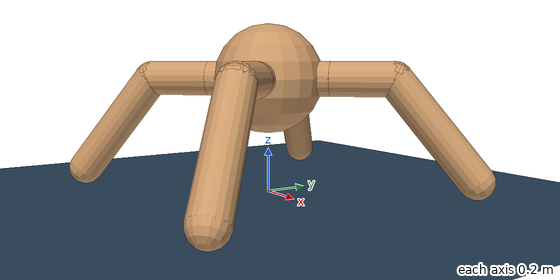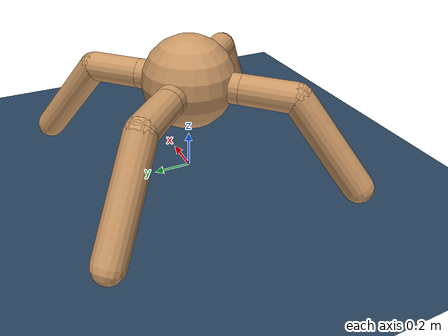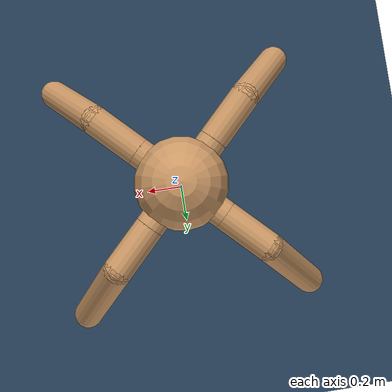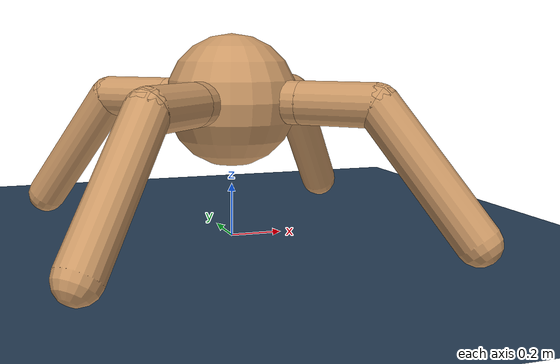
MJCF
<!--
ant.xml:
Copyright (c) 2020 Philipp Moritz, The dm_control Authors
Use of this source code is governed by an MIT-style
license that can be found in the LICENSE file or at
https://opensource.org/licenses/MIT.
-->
<mujoco model="ant_scene">

  <include file="ant.xml"/>

  <asset>
    <texture type="skybox" builtin="gradient" rgb1=".3 .5 .7" rgb2="0 0 0" width="512" height="512"/>
    <texture name="grid" type="2d" builtin="checker" width="512" height="512" rgb1=".1 .2 .3" rgb2=".2 .3 .4"/>
    <material name="grid" texture="grid" texrepeat="1 1" texuniform="true" reflectance=".2"/>
  </asset>

  <worldbody>
    <geom name="floor" size="0 0 .05" type="plane" material="grid" condim="3"/>
  </worldbody>

</mujoco>

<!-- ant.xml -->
<mujoco model="ant">
  <compiler angle="radian"/>
  <default>
    <motor ctrlrange="-1.0 1.0" ctrllimited="true" gear="75"/>
    <geom friction="1 0.5 0.5" solref=".02 1" solimp="0 .8 .01" material="self" density="50.0"/>
    <joint limited="true" armature="1" damping="1" stiffness="1" solreflimit=".04 1" solimplimit="0 .8 .03"/>
    <default class="rangefinder">
        <site type="capsule" size=".05 .5" rgba="1 0 0 .4" group="4"/>
    </default>
  </default>
  <asset>
    <material name="self" rgba=".8 .6 .4 1"/>
  </asset>
  <worldbody>
    <light name="spotlight" mode="targetbodycom" target="torso" diffuse=".8 .8 .8" specular="0.3 0.3 0.3" pos="0 -20 4" cutoff="10"/>
    <camera name="sideon" pos="0 -10 5" fovy="45" mode="targetbody" target="torso" />
    <camera name="float_far"  pos="-4 0 2" xyaxes="0 -1 0 .5 0 1" mode="trackcom" fovy="90"/>
    <body name="torso" pos="0 0 0.522">
      <freejoint/>
      <camera name="floating"  pos="-2 0 1" xyaxes="0 -1 0 .5 0 1" mode="trackcom" fovy="90"/>
      <camera name="egocentric"  pos=".25 0 .11" xyaxes="0 -1 0 0 0 1" fovy="90" />

      <site name="torso_touch" type="box" size="0.26 0.26 0.26" rgba="0 0 1 1" group="4"/>
      <geom name="torso_geom" type="sphere" size="0.25" density="100.0"/>
      <site name="torso_site" size="0.05" rgba="1 0 0 1"/>

      <site name="rf_xp" class="rangefinder" pos="0.25 0 0.11" zaxis="1 0 0"/>
      <site name="rf_xn" class="rangefinder" pos="-0.25 0 0.11" zaxis="-1 0 0"/>
      <site name="rf_yp" class="rangefinder" pos="0 0.25 0.11"  zaxis="0 1 0"/>
      <site name="rf_yn" class="rangefinder" pos="0 -0.25 0.11"  zaxis="0 -1 0"/>
      <site name="rf_xpyp" class="rangefinder" pos="0.25 0.25 0.11" zaxis="1 1 0"/>
      <site name="rf_xpyn" class="rangefinder" pos="0.25 -0.25 0.11"  zaxis="1 -1 0"/>
      <site name="rf_xnyn" class="rangefinder" pos="-0.25 -0.25 0.11" zaxis="-1 -1 0"/>
      <site name="rf_xnyp" class="rangefinder" pos="-0.25 0.25 0.11" zaxis="-1 1 0"/>

      <!-- sites that visualize the x-y axis of the ant body, good for debugging -->
      <site name="x_pos" type="capsule" pos="0.5 0 0" size=".05 .5" zaxis="1 0 0" rgba="1 0 0 1" group="5"/>
      <site name="x_neg" type="capsule" pos="-0.5 0 0" size=".05 .5"  zaxis="-1 0 0" rgba="0 0 1 1"  group="5"/>
      <site name="y_pos" type="capsule" pos="0 0.5 0" size=".05 .5"  zaxis="0 1 0" rgba="1 1 1 1" group="5"/>
      <site name="y_neg" type="capsule" pos="0 -0.5 0" size=".05 .5"  zaxis="0 -1 0" rgba="0 0 0 1" group="5"/>
      <site name="port_site" pos=".5 0 0" size="0.5" rgba="1 0 0 1" group="5"/>
      <site name="starboard_site" pos="-.5 0 0" size="0.5" rgba="0 1 0 1" group="5"/>

      <site name="rc1" type="sphere" size=".1" rgba="1 1 1 1"/>
      <site name="rc2" type="sphere" size=".1" rgba="1 1 1 1"/>
      <site name="rc3" type="sphere" size=".1" rgba="1 1 1 1"/>
      <site name="rc4" type="sphere" size=".1" rgba="1 1 1 1"/>
      <site name="rc5" type="sphere" size=".1" rgba="1 1 1 1"/>
      <site name="rc6" type="sphere" size=".1" rgba="1 1 1 1"/>
      <site name="rc7" type="sphere" size=".1" rgba="1 1 1 1"/>
      <site name="rc8" type="sphere" size=".1" rgba="1 1 1 1"/>
      <site name="rc9" type="sphere" size=".1" rgba="1 1 1 1"/>
      <site name="rc10" type="sphere" size=".1" rgba="1 1 1 1"/>

      <body name="front_left_leg">
        <geom name="front_left_aux_geom" type="capsule" size="0.08" fromto="0.0 0.0 0.0 0.2 0.2 0.0"/>
        <body name="front_left_aux" pos="0.2 0.2 0">
          <joint name="front_left_hip" range="-0.52359 0.52359"/>
          <geom name="front_left_leg_geom" type="capsule" size="0.08" fromto="0.0 0.0 0.0 0.2 0.2 0.0"/>
          <site name="front_left_leg_touch" type="box" pos="0.1 0.1 0" size="0.09 0.09 0.24" zaxis="0.2 0.2 0" rgba="1 1 0 0"/>
          <body name="front_left_foot" pos="0.2 0.2 0" quat="0.98480775301220802 -0.33428158105097677 0.33428158105097677 0">
            <joint name="front_left_ankle" type="hinge" pos="0.0 0.0 0.0" axis="1 -1 0" range="-0.34906 0.34906"/>
            <geom name="front_left_ankle_geom" type="capsule" size="0.08" fromto="0.0 0.0 0.0 0.4 0.4 0.0"/>
            <site name="front_left_ankle_touch" type="box" pos="0.2 0.2 0" size="0.1 0.1 0.45" zaxis="0.2 0.2 0.0" rgba="1 1 0 0" />
          </body>
        </body>
      </body>

      <body name="front_right_leg">
        <geom name="front_right_aux_geom" type="capsule" size="0.08" fromto="0.0 0.0 0.0 0.2 -0.2 0.0"/>
        <body name="front_right_aux" pos="0.2 -0.2 0">
          <joint name="front_right_hip" range="-0.52359 0.52359"/>
          <geom name="front_right_leg_geom" type="capsule" size="0.08" fromto="0.0 0.0 0.0 0.2 -0.2 0.0"/>
          <site name="front_right_leg_touch" type="box" pos="0.1 -0.1 0" size="0.09 0.09 0.24" zaxis="0.2 -0.2 0.0" rgba="0 0 1 0"/>
          <body name="front_right_foot" pos="0.2 -0.2 0" quat="0.98480775301220802 0.33428158105097677 0.33428158105097677 0">
            <joint name="front_right_ankle" type="hinge" pos="0.0 0.0 0.0" axis="-1 -1 0" range="-0.34906 0.34906"/>
            <geom name="front_right_ankle_geom" type="capsule" size="0.08" fromto="0.0 0.0 0.0 0.4 -0.4 0.0"/>
            <site name="front_right_ankle_touch" type="box" pos="0.2 -0.2 0" size="0.09 0.09 0.39" zaxis="0.2 -0.2 0.0" rgba="0 0 1 0"/>
          </body>
        </body>
      </body>

      <body name="back_right_leg">
        <geom name="back_right_aux_geom" type="capsule" size="0.08" fromto="0.0 0.0 0.0 -0.2 -0.2 0.0"/>
        <body name="back_right_aux" pos="-0.2 -0.2 0">
          <joint name="back_right_hip" range="-0.52359 0.52359"/>
          <geom name="back_right_leg_geom" type="capsule" size="0.08" fromto="0.0 0.0 0.0 -0.2 -0.2 0.0"/>
          <site name="back_right_leg_touch" type="box" pos="-0.1 -0.1 0" size="0.09 0.09 0.24" zaxis="-0.2 -0.2 0.0" rgba="0 0 1 0"/>
          <body name="back_right_foot" pos="-0.2 -0.2 0" quat="0.98480775301220802 0.33428158105097677 -0.33428158105097677 0">
            <joint name="back_right_ankle" type="hinge" pos="0.0 0.0 0.0" axis="-1 1 0" range="-0.34906 0.34906"/>
            <geom name="back_right_ankle_geom" type="capsule" size="0.08" fromto="0.0 0.0 0.0 -0.4 -0.4 0.0"/>
            <site name="back_right_ankle_touch" type="box" pos="-0.2 -0.2 0" size="0.09 0.09 0.39" zaxis="-0.2 -0.2 0.0" rgba="0 0 1 0"/>
          </body>
        </body>
      </body>

      <body name="back_left_leg">
        <geom name="back_left_aux_geom" type="capsule" size="0.08" fromto="0.0 0.0 0.0 -0.2 0.2 0.0"/>
        <body name="back_left_aux" pos="-0.2 0.2 0">
          <joint name="back_left_hip" range="-0.52359 0.52359"/>
          <geom name="back_left_leg_geom" type="capsule" size="0.08" fromto="0.0 0.0 0.0 -0.2 0.2 0.0"/>
          <site name="back_left_leg_touch" type="box" pos="-0.1 0.1 0" size="0.09 0.09 0.24" zaxis="-0.2 0.2 0.0" rgba="0 0 1 0"/>
          <body name="back_left_foot" pos="-0.2 0.2 0" quat="0.98480775301220802 -0.33428158105097677 -0.33428158105097677 0">
            <joint name="back_left_ankle" type="hinge" pos="0.0 0.0 0.0" axis="1 1 0" range="-0.34906 0.34906" />
            <geom name="back_left_ankle_geom" type="capsule" size="0.08" fromto="0.0 0.0 0.0 -0.4 0.4 0.0"/>
            <site name="back_left_ankle_touch" type="box" pos="-0.2 0.2 0" size="0.09 0.09 0.39" zaxis="-0.2 0.2 0.0" rgba="0 0 1 0"/>
          </body>
        </body>
      </body>

    </body>
  </worldbody>

  <actuator>
    <motor name="front_left_hip"   joint="front_left_hip"/>
    <motor name="front_left_ankle" joint="front_left_ankle"/>
    <motor name="front_right_hip"   joint="front_right_hip"/>
    <motor name="front_right_ankle" joint="front_right_ankle"/>
    <motor name="back_right_hip"   joint="back_right_hip"/>
    <motor name="back_right_ankle" joint="back_right_ankle"/>
    <motor name="back_left_hip"   joint="back_left_hip"/>
    <motor name="back_left_ankle" joint="back_left_ankle"/>
  </actuator>

  <sensor>
    <touch name="torso_touch" site="torso_touch"/>
    <touch name="front_left_leg_touch" site="front_left_leg_touch"/>
    <touch name="front_left_ankle_touch" site="front_left_ankle_touch"/>
    <touch name="back_left_leg_touch" site="back_left_leg_touch"/>
    <touch name="back_left_ankle_touch" site="back_left_ankle_touch"/>
    <touch name="back_right_leg_touch" site="back_right_leg_touch"/>
    <touch name="back_right_ankle_touch" site="back_right_ankle_touch"/>
    <touch name="front_right_leg_touch" site="front_right_leg_touch"/>
    <touch name="front_right_ankle_touch" site="front_right_ankle_touch"/>
    <velocimeter name="torso_vel" site="torso_site"/>
    <gyro name="torso_gyro" site="torso_site"/>
    <accelerometer name="torso_accel" site="torso_site"/>
    <rangefinder name="rf_xp" site="rf_xp"/>
    <rangefinder name="rf_yp" site="rf_yp"/>
    <rangefinder name="rf_xn" site="rf_xn"/>
    <rangefinder name="rf_yn" site="rf_yn"/>
    <rangefinder name="rf_xpyp" site="rf_xpyp"/>
    <rangefinder name="rf_xpyn" site="rf_xpyn"/>
    <rangefinder name="rf_xnyp" site="rf_xnyp"/>
    <rangefinder name="rf_xnyn" site="rf_xnyn"/>
  </sensor>

  <contact>
    <exclude body1="torso" body2="front_left_aux"/>
    <exclude body1="torso" body2="front_right_aux"/>
    <exclude body1="torso" body2="back_right_aux"/>
    <exclude body1="torso" body2="back_left_aux"/>
  </contact>
</mujoco>
